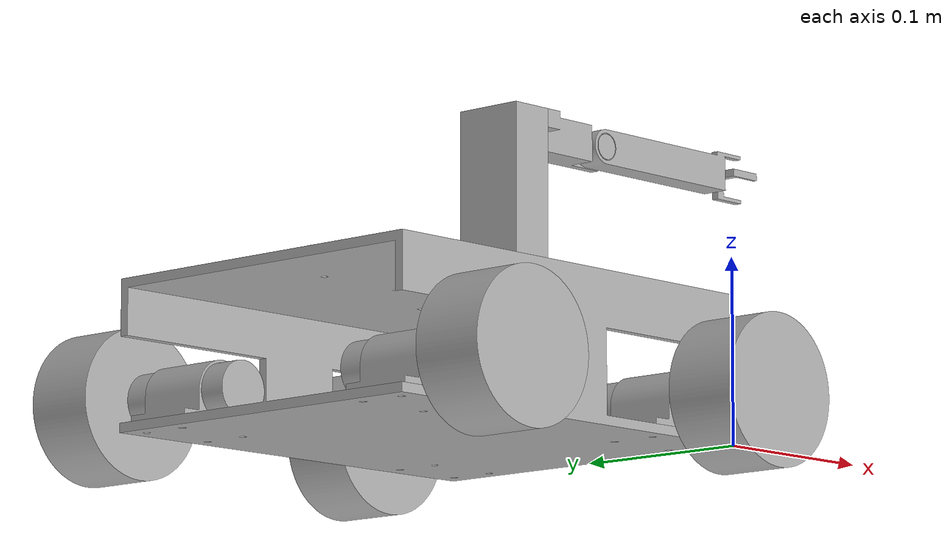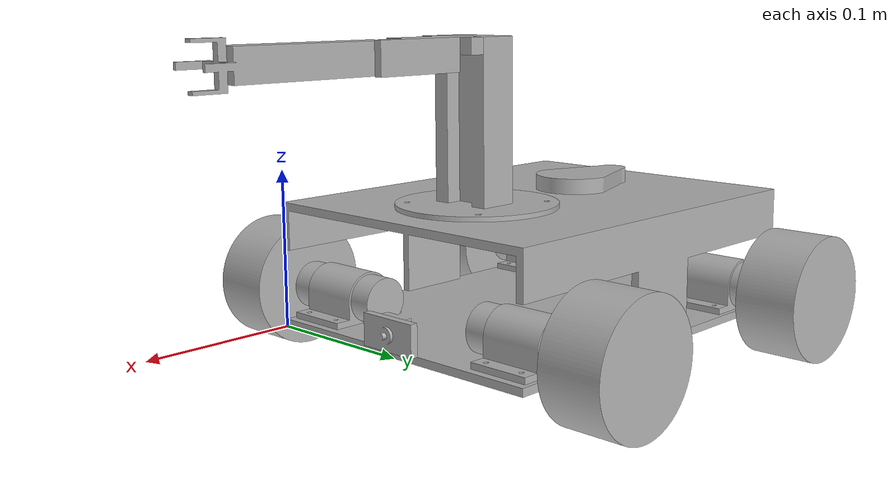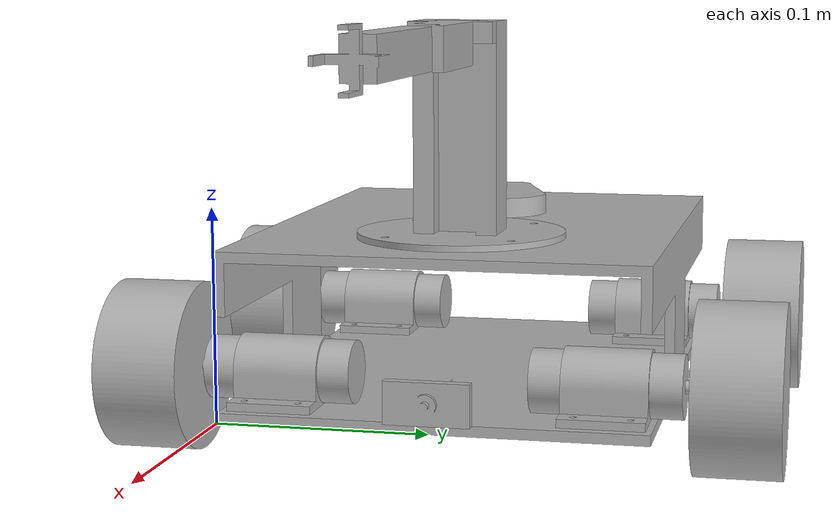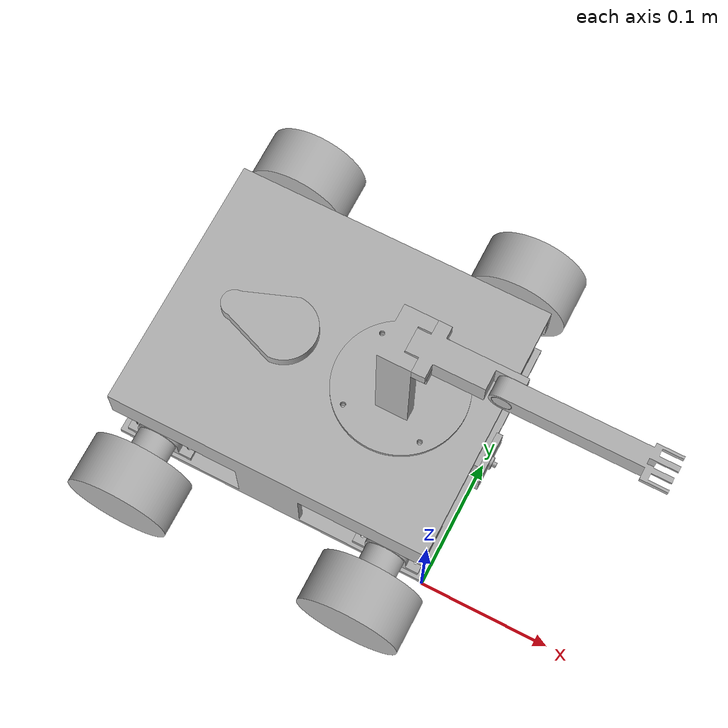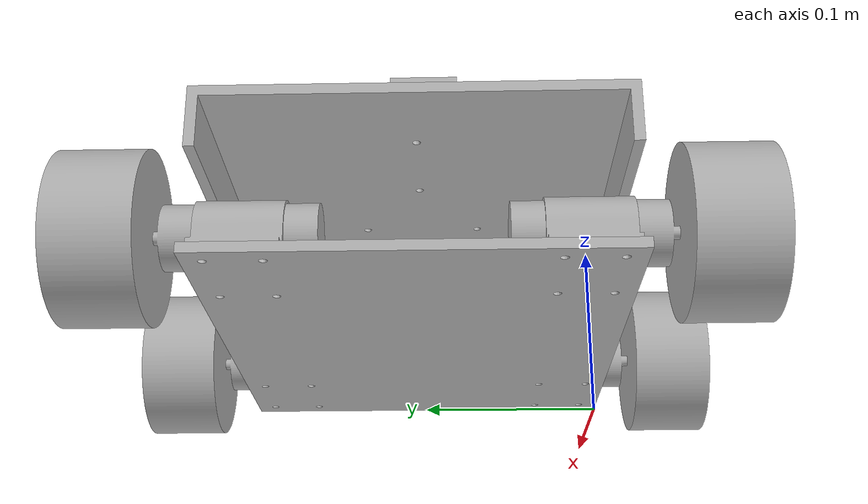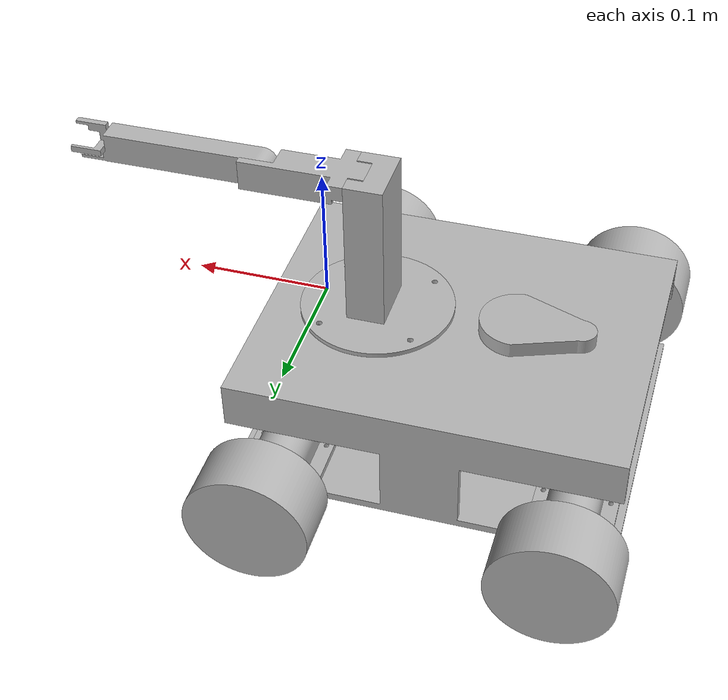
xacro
<?xml version="1.0" ?>
<robot name="robot_ros_clean" xmlns:xacro="http://www.ros.org/wiki/xacro">

<xacro:include filename="$(find robot_ros_clean_description)/urdf/materials.xacro" />
<xacro:include filename="$(find robot_ros_clean_description)/urdf/robot_ros_clean.gazebo" />

<link name="base_footprint"/>

<joint name="base_footprint_joint" type="fixed">
  <parent link="base_footprint"/>
  <child link="base_link"/>
  <origin xyz="0 0 0" rpy="0 0 0"/>
</joint>

<!--                        BASE LINK                                  -->
<link name="base_link">
  <inertial>
    <origin xyz="-0.12462045008338714 0.09999999999999995 0.04188167126230022" rpy="0 0 0"/>
    <mass value="2.283418938552482"/>
    <inertia ixx="0.012527" iyy="0.014412" izz="0.021139" ixy="-0.0" iyz="-0.0" ixz="2.5e-05"/>
  </inertial>
  <visual>
    <origin xyz="0 0 0" rpy="0 0 0"/>
    <geometry>
      <mesh filename="package://robot_ros_clean_description/meshes/base_link.stl" scale="0.001 0.001 0.001"/>
    </geometry>
    <material name="silver"/>
  </visual>
  <collision>
    <origin xyz="0 0 0" rpy="0 0 0"/>
    <geometry>
      <mesh filename="package://robot_ros_clean_description/meshes/base_link.stl" scale="0.001 0.001 0.001"/>
    </geometry>
  </collision>
</link>

<!--                     TAY MAY (2-DOF ARM: P-R)                     -->
<link name="ros_base_arm_1">
  <inertial>
    <origin xyz="-0.029516493136890608 0.03000000000000004 0.04134096552037238" rpy="0 0 0"/>
    <mass value="0.4033034789727494"/>
    <inertia ixx="0.000554" iyy="0.000519" izz="0.000177" ixy="-0.0" iyz="0.0" ixz="-2e-06"/>
  </inertial>
  <visual>
    <origin xyz="0.04 -0.07 -0.08" rpy="0 0 0"/>
    <geometry>
      <mesh filename="package://robot_ros_clean_description/meshes/ros_base_arm_1.stl" scale="0.001 0.001 0.001"/>
    </geometry>
    <material name="silver"/>
  </visual>
  <collision>
    <origin xyz="0.04 -0.07 -0.08" rpy="0 0 0"/>
    <geometry>
      <mesh filename="package://robot_ros_clean_description/meshes/ros_base_arm_1.stl" scale="0.001 0.001 0.001"/>
    </geometry>
  </collision>
</link>

<!-- Khop 1: Tinh tien (Prismatic) -->
<link name="ros_link1_1">
  <inertial>
    <origin xyz="0.038230908420957735 0.0011931596637218683 -0.008863149486995903" rpy="0 0 0"/>
    <mass value="0.09948537534151555"/>
    <inertia ixx="8e-06" iyy="4.4e-05" izz="4.6e-05" ixy="-2e-06" iyz="0.0" ixz="3e-06"/>
  </inertial>
  <visual>
    <origin xyz="0.065 -0.1 -0.183" rpy="0 0 0"/>
    <geometry>
      <mesh filename="package://robot_ros_clean_description/meshes/ros_link1_1.stl" scale="0.001 0.001 0.001"/>
    </geometry>
    <material name="silver"/>
  </visual>
  <collision>
    <origin xyz="0.065 -0.1 -0.183" rpy="0 0 0"/>
    <geometry>
      <mesh filename="package://robot_ros_clean_description/meshes/ros_link1_1.stl" scale="0.001 0.001 0.001"/>
    </geometry>
  </collision>
</link>

<!-- Khop 2: Quay (Revolute) -->
<link name="ros_link2_1">
  <inertial>
    <origin xyz="0.042406282335935554 2.7755575615628914e-17 0.03245348508382098" rpy="0 0 0"/>
    <mass value="0.11487741223113516"/>
    <inertia ixx="4.4e-05" iyy="0.000111" izz="7.2e-05" ixy="0.0" iyz="0.0" ixz="-5e-05"/>
  </inertial>
  <visual>
    <origin xyz="-0.005 -0.0985 -0.173" rpy="0 0 0"/>
    <geometry>
      <mesh filename="package://robot_ros_clean_description/meshes/ros_link2_1.stl" scale="0.001 0.001 0.001"/>
    </geometry>
    <material name="silver"/>
  </visual>
  <collision>
    <origin xyz="-0.005 -0.0985 -0.173" rpy="0 0 0"/>
    <geometry>
      <mesh filename="package://robot_ros_clean_description/meshes/ros_link2_1.stl" scale="0.001 0.001 0.001"/>
    </geometry>
  </collision>
</link>

<!--                  BANH XE MECANUM - FRONT LEFT (1)                -->
<link name="motor_holder_1">
  <inertial>
    <origin xyz="-0.021500000000021897 0.012999999999999979 0.008985632228465181" rpy="0 0 0"/>
    <mass value="0.0883728633386553"/>
    <inertia ixx="2.1e-05" iyy="3.1e-05" izz="3.3e-05" ixy="-0.0" iyz="-0.0" ixz="0.0"/>
  </inertial>
  <visual>
    <origin xyz="0.01 -0.01 -0.005" rpy="0 0 0"/>
    <geometry>
      <mesh filename="package://robot_ros_clean_description/meshes/motor-holder_1.stl" scale="0.001 0.001 0.001"/>
    </geometry>
    <material name="silver"/>
  </visual>
  <collision>
    <origin xyz="0.01 -0.01 -0.005" rpy="0 0 0"/>
    <geometry>
      <mesh filename="package://robot_ros_clean_description/meshes/motor-holder_1.stl" scale="0.001 0.001 0.001"/>
    </geometry>
  </collision>
</link>

<link name="dong_co_1">
  <inertial>
    <origin xyz="2.067790383364354e-15 -0.00036118980169993695 2.0816681711721685e-16" rpy="0 0 0"/>
    <mass value="0.39174796452285"/>
    <inertia ixx="0.000186" iyy="4.4e-05" izz="0.000186" ixy="0.0" iyz="0.0" ixz="0.0"/>
  </inertial>
  <visual>
    <origin xyz="0.0315 -0.023 -0.0201" rpy="0 0 0"/>
    <geometry>
      <mesh filename="package://robot_ros_clean_description/meshes/dong_co_1.stl" scale="0.001 0.001 0.001"/>
    </geometry>
    <material name="silver"/>
  </visual>
  <collision>
    <origin xyz="0.0315 -0.023 -0.0201" rpy="0 0 0"/>
    <geometry>
      <mesh filename="package://robot_ros_clean_description/meshes/dong_co_1.stl" scale="0.001 0.001 0.001"/>
    </geometry>
  </collision>
</link>

<link name="banh_xe_1">
  <inertial>
    <origin xyz="2.8171909249863347e-15 -0.010021123454858952 5.169475958410885e-16" rpy="0 0 0"/>
    <mass value="0.18672464343655906"/>
    <inertia ixx="0.0001" iyy="0.00015" izz="0.0001" ixy="-0.0" iyz="0.0" ixz="-0.0"/>
  </inertial>
  <visual>
    <origin xyz="0.0315 0.027 -0.0201" rpy="0 0 0"/>
    <geometry>
      <mesh filename="package://robot_ros_clean_description/meshes/banh_xe_1.stl" scale="0.001 0.001 0.001"/>
    </geometry>
    <material name="silver"/>
  </visual>
  <collision>
    <origin xyz="0.0315 0.027 -0.0201" rpy="0 0 0"/>
    <geometry>
      <mesh filename="package://robot_ros_clean_description/meshes/banh_xe_1.stl" scale="0.001 0.001 0.001"/>
    </geometry>
  </collision>
</link>

<!--                  BANH XE MECANUM - BACK LEFT (2)                 -->
<link name="motor_holder_2">
  <inertial>
    <origin xyz="-0.02149999999997857 0.013000000000000067 0.00898563222846439" rpy="0 0 0"/>
    <mass value="0.0883728633386553"/>
    <inertia ixx="2.1e-05" iyy="3.1e-05" izz="3.3e-05" ixy="-0.0" iyz="0.0" ixz="-0.0"/>
  </inertial>
  <visual>
    <origin xyz="0.01 -0.164 -0.005" rpy="0 0 0"/>
    <geometry>
      <mesh filename="package://robot_ros_clean_description/meshes/motor-holder_2.stl" scale="0.001 0.001 0.001"/>
    </geometry>
    <material name="silver"/>
  </visual>
  <collision>
    <origin xyz="0.01 -0.164 -0.005" rpy="0 0 0"/>
    <geometry>
      <mesh filename="package://robot_ros_clean_description/meshes/motor-holder_2.stl" scale="0.001 0.001 0.001"/>
    </geometry>
  </collision>
</link>

<link name="dong_co_2">
  <inertial>
    <origin xyz="1.762479051592436e-15 0.0003611898016997739 -9.124645483638005e-16" rpy="0 0 0"/>
    <mass value="0.39174796452285"/>
    <inertia ixx="0.000186" iyy="4.4e-05" izz="0.000186" ixy="-0.0" iyz="0.0" ixz="-0.0"/>
  </inertial>
  <visual>
    <origin xyz="0.0315 -0.177 -0.0201" rpy="0 0 0"/>
    <geometry>
      <mesh filename="package://robot_ros_clean_description/meshes/dong_co_2.stl" scale="0.001 0.001 0.001"/>
    </geometry>
    <material name="silver"/>
  </visual>
  <collision>
    <origin xyz="0.0315 -0.177 -0.0201" rpy="0 0 0"/>
    <geometry>
      <mesh filename="package://robot_ros_clean_description/meshes/dong_co_2.stl" scale="0.001 0.001 0.001"/>
    </geometry>
  </collision>
</link>

<link name="banh_xe_2">
  <inertial>
    <origin xyz="0.0 0.010021123454857339 -3.4243441415782172e-15" rpy="0 0 0"/>
    <mass value="0.18672464343655906"/>
    <inertia ixx="0.0001" iyy="0.00015" izz="0.0001" ixy="0.0" iyz="-0.0" ixz="0.0"/>
  </inertial>
  <visual>
    <origin xyz="0.0315 -0.227 -0.0201" rpy="0 0 0"/>
    <geometry>
      <mesh filename="package://robot_ros_clean_description/meshes/banh_xe_2.stl" scale="0.001 0.001 0.001"/>
    </geometry>
    <material name="silver"/>
  </visual>
  <collision>
    <origin xyz="0.0315 -0.227 -0.0201" rpy="0 0 0"/>
    <geometry>
      <mesh filename="package://robot_ros_clean_description/meshes/banh_xe_2.stl" scale="0.001 0.001 0.001"/>
    </geometry>
  </collision>
</link>

<!--                  BANH XE MECANUM - FRONT RIGHT (3)               -->
<link name="motor_holder_3">
  <inertial>
    <origin xyz="0.021500000000021446 -0.012999999999999973 0.008985632228466295" rpy="0 0 0"/>
    <mass value="0.0883728633386553"/>
    <inertia ixx="2.1e-05" iyy="3.1e-05" izz="3.3e-05" ixy="-0.0" iyz="0.0" ixz="-0.0"/>
  </inertial>
  <visual>
    <origin xyz="0.24 -0.036 -0.005" rpy="0 0 0"/>
    <geometry>
      <mesh filename="package://robot_ros_clean_description/meshes/motor-holder_3.stl" scale="0.001 0.001 0.001"/>
    </geometry>
    <material name="silver"/>
  </visual>
  <collision>
    <origin xyz="0.24 -0.036 -0.005" rpy="0 0 0"/>
    <geometry>
      <mesh filename="package://robot_ros_clean_description/meshes/motor-holder_3.stl" scale="0.001 0.001 0.001"/>
    </geometry>
  </collision>
</link>

<link name="dong_co_3">
  <inertial>
    <origin xyz="1.6653345369377348e-15 -0.0003611898016992847 -9.26342336171615e-16" rpy="0 0 0"/>
    <mass value="0.39174796452285"/>
    <inertia ixx="0.000186" iyy="4.4e-05" izz="0.000186" ixy="0.0" iyz="-0.0" ixz="0.0"/>
  </inertial>
  <visual>
    <origin xyz="0.2185 -0.023 -0.0201" rpy="0 0 0"/>
    <geometry>
      <mesh filename="package://robot_ros_clean_description/meshes/dong_co_3.stl" scale="0.001 0.001 0.001"/>
    </geometry>
    <material name="silver"/>
  </visual>
  <collision>
    <origin xyz="0.2185 -0.023 -0.0201" rpy="0 0 0"/>
    <geometry>
      <mesh filename="package://robot_ros_clean_description/meshes/dong_co_3.stl" scale="0.001 0.001 0.001"/>
    </geometry>
  </collision>
</link>

<link name="banh_xe_3">
  <inertial>
    <origin xyz="-1.1379786002407855e-15 -0.010021123454857981 3.5006719745211967e-15" rpy="0 0 0"/>
    <mass value="0.18672464343655906"/>
    <inertia ixx="0.0001" iyy="0.00015" izz="0.0001" ixy="-0.0" iyz="0.0" ixz="0.0"/>
  </inertial>
  <visual>
    <origin xyz="0.2185 0.027 -0.0201" rpy="0 0 0"/>
    <geometry>
      <mesh filename="package://robot_ros_clean_description/meshes/banh_xe_3.stl" scale="0.001 0.001 0.001"/>
    </geometry>
    <material name="silver"/>
  </visual>
  <collision>
    <origin xyz="0.2185 0.027 -0.0201" rpy="0 0 0"/>
    <geometry>
      <mesh filename="package://robot_ros_clean_description/meshes/banh_xe_3.stl" scale="0.001 0.001 0.001"/>
    </geometry>
  </collision>
</link>

<!--                  BANH XE MECANUM - BACK RIGHT (4)                -->
<link name="motor_holder_4">
  <inertial>
    <origin xyz="0.02150000000002139 0.01300000000000015 0.008985632228466291" rpy="0 0 0"/>
    <mass value="0.0883728633386553"/>
    <inertia ixx="2.1e-05" iyy="3.1e-05" izz="3.3e-05" ixy="-0.0" iyz="0.0" ixz="-0.0"/>
  </inertial>
  <visual>
    <origin xyz="0.24 -0.164 -0.005" rpy="0 0 0"/>
    <geometry>
      <mesh filename="package://robot_ros_clean_description/meshes/motor-holder_4.stl" scale="0.001 0.001 0.001"/>
    </geometry>
    <material name="silver"/>
  </visual>
  <collision>
    <origin xyz="0.24 -0.164 -0.005" rpy="0 0 0"/>
    <geometry>
      <mesh filename="package://robot_ros_clean_description/meshes/motor-holder_4.stl" scale="0.001 0.001 0.001"/>
    </geometry>
  </collision>
</link>

<link name="dong_co_4">
  <inertial>
    <origin xyz="1.8041124150158794e-15 0.00036118980169985715 -7.494005416219807e-16" rpy="0 0 0"/>
    <mass value="0.39174796452285"/>
    <inertia ixx="0.000186" iyy="4.4e-05" izz="0.000186" ixy="-0.0" iyz="0.0" ixz="0.0"/>
  </inertial>
  <visual>
    <origin xyz="0.2185 -0.177 -0.0201" rpy="0 0 0"/>
    <geometry>
      <mesh filename="package://robot_ros_clean_description/meshes/dong_co_4.stl" scale="0.001 0.001 0.001"/>
    </geometry>
    <material name="silver"/>
  </visual>
  <collision>
    <origin xyz="0.2185 -0.177 -0.0201" rpy="0 0 0"/>
    <geometry>
      <mesh filename="package://robot_ros_clean_description/meshes/dong_co_4.stl" scale="0.001 0.001 0.001"/>
    </geometry>
  </collision>
</link>

<link name="banh_xe_4">
  <inertial>
    <origin xyz="2.7755575615628914e-17 0.010021123454858422 -3.3237301799715624e-15" rpy="0 0 0"/>
    <mass value="0.18672464343655906"/>
    <inertia ixx="0.0001" iyy="0.00015" izz="0.0001" ixy="0.0" iyz="0.0" ixz="0.0"/>
  </inertial>
  <visual>
    <origin xyz="0.2185 -0.227 -0.0201" rpy="0 0 0"/>
    <geometry>
      <mesh filename="package://robot_ros_clean_description/meshes/banh_xe_4.stl" scale="0.001 0.001 0.001"/>
    </geometry>
    <material name="silver"/>
  </visual>
  <collision>
    <origin xyz="0.2185 -0.227 -0.0201" rpy="0 0 0"/>
    <geometry>
      <mesh filename="package://robot_ros_clean_description/meshes/banh_xe_4.stl" scale="0.001 0.001 0.001"/>
    </geometry>
  </collision>
</link>

<!--                        CAM BIEN                                   -->
<link name="ros_LiDar_1">
  <inertial>
    <origin xyz="-0.020570799003321955 4.163336342344337e-17 0.005010425278889286" rpy="0 0 0"/>
    <mass value="0.19870606989277823"/>
    <inertia ixx="2.7e-05" iyy="7.1e-05" izz="9.4e-05" ixy="0.0" iyz="0.0" ixz="0.0"/>
  </inertial>
  <visual>
    <origin xyz="0.15 -0.1 -0.08" rpy="0 0 0"/>
    <geometry>
      <mesh filename="package://robot_ros_clean_description/meshes/ros_LiDar_1.stl" scale="0.001 0.001 0.001"/>
    </geometry>
    <material name="silver"/>
  </visual>
  <collision>
    <origin xyz="0.15 -0.1 -0.08" rpy="0 0 0"/>
    <geometry>
      <mesh filename="package://robot_ros_clean_description/meshes/ros_LiDar_1.stl" scale="0.001 0.001 0.001"/>
    </geometry>
  </collision>
</link>

<link name="ros_camera_1">
  <inertial>
    <origin xyz="0.002706674669848084 -0.004999999999974414 1.3798388616252655e-07" rpy="0 0 0"/>
    <mass value="0.03233713708856587"/>
    <inertia ixx="5e-06" iyy="1e-06" izz="4e-06" ixy="-0.0" iyz="0.0" ixz="0.0"/>
  </inertial>
  <visual>
    <origin xyz="-0.0 -0.105 -0.015" rpy="0 0 0"/>
    <geometry>
      <mesh filename="package://robot_ros_clean_description/meshes/ros_camera_1.stl" scale="0.001 0.001 0.001"/>
    </geometry>
    <material name="silver"/>
  </visual>
  <collision>
    <origin xyz="-0.0 -0.105 -0.015" rpy="0 0 0"/>
    <geometry>
      <mesh filename="package://robot_ros_clean_description/meshes/ros_camera_1.stl" scale="0.001 0.001 0.001"/>
    </geometry>
  </collision>
</link>

<!--                ENCODER LINK (virtual link cho encoder)           -->
<link name="encoder_link">
  <inertial>
    <origin xyz="0 0 0" rpy="0 0 0"/>
    <mass value="0.001"/>
    <inertia ixx="1e-05" iyy="1e-05" izz="1e-05" ixy="0" iyz="0" ixz="0"/>
  </inertial>
</link>

<!--                           JOINTS                                  -->

<!-- ARM: fixed base -->
<joint name="fixed_arm_base" type="fixed">
  <origin xyz="-0.04 0.07 0.08" rpy="0 0 0"/>
  <parent link="base_link"/>
  <child link="ros_base_arm_1"/>
</joint>

<!-- ARM: Khop 1 - Tinh tien (Prismatic) - KHOP P -->
<joint name="slider_joint" type="prismatic">
  <origin xyz="-0.025 0.03 0.103" rpy="0 0 0"/>
  <parent link="ros_base_arm_1"/>
  <child link="ros_link1_1"/>
  <axis xyz="0.0 0.0 1.0"/>
  <limit upper="0.0" lower="-0.07" effort="100" velocity="100"/>
</joint>

<!-- ARM: Khop 2 - Quay (Revolute) - KHOP R -->
<joint name="revolute_arm" type="revolute">
  <origin xyz="0.07 -0.0015 -0.01" rpy="0 0 0"/>
  <parent link="ros_link1_1"/>
  <child link="ros_link2_1"/>
  <axis xyz="0.0 1.0 0.0"/>
  <limit upper="1.570796" lower="-1.570796" effort="100" velocity="100"/>
</joint>

<!-- WHEEL FL: motor holder -->
<joint name="fixed_motor_holder_1" type="fixed">
  <origin xyz="-0.01 0.01 0.005" rpy="0 0 0"/>
  <parent link="base_link"/>
  <child link="motor_holder_1"/>
</joint>

<joint name="fixed_dong_co_1" type="fixed">
  <origin xyz="-0.0215 0.013 0.0151" rpy="0 0 0"/>
  <parent link="motor_holder_1"/>
  <child link="dong_co_1"/>
</joint>

<!-- WHEEL FL: banh xe - co encoder -->
<joint name="wheel_fl_joint" type="continuous">
  <origin xyz="0.0 -0.05 0.0" rpy="0 0 0"/>
  <parent link="dong_co_1"/>
  <child link="banh_xe_1"/>
  <axis xyz="0.0 1.0 0.0"/>
</joint>

<!-- WHEEL BL: motor holder -->
<joint name="fixed_motor_holder_2" type="fixed">
  <origin xyz="-0.01 0.164 0.005" rpy="0 0 0"/>
  <parent link="base_link"/>
  <child link="motor_holder_2"/>
</joint>

<joint name="fixed_dong_co_2" type="fixed">
  <origin xyz="-0.0215 0.013 0.0151" rpy="0 0 0"/>
  <parent link="motor_holder_2"/>
  <child link="dong_co_2"/>
</joint>

<!-- WHEEL BL: banh xe - co encoder -->
<joint name="wheel_bl_joint" type="continuous">
  <origin xyz="0.0 0.05 0.0" rpy="0 0 0"/>
  <parent link="dong_co_2"/>
  <child link="banh_xe_2"/>
  <axis xyz="0.0 1.0 0.0"/>
</joint>

<!-- WHEEL FR: motor holder -->
<joint name="fixed_motor_holder_3" type="fixed">
  <origin xyz="-0.24 0.036 0.005" rpy="0 0 0"/>
  <parent link="base_link"/>
  <child link="motor_holder_3"/>
</joint>

<joint name="fixed_dong_co_3" type="fixed">
  <origin xyz="0.0215 -0.013 0.0151" rpy="0 0 0"/>
  <parent link="motor_holder_3"/>
  <child link="dong_co_3"/>
</joint>

<!-- WHEEL FR: banh xe - co encoder -->
<joint name="wheel_fr_joint" type="continuous">
  <origin xyz="0.0 -0.05 0.0" rpy="0 0 0"/>
  <parent link="dong_co_3"/>
  <child link="banh_xe_3"/>
  <axis xyz="0.0 1.0 0.0"/>
</joint>

<!-- WHEEL BR: motor holder -->
<joint name="fixed_motor_holder_4" type="fixed">
  <origin xyz="-0.24 0.164 0.005" rpy="0 0 0"/>
  <parent link="base_link"/>
  <child link="motor_holder_4"/>
</joint>

<joint name="fixed_dong_co_4" type="fixed">
  <origin xyz="0.0215 0.013 0.0151" rpy="0 0 0"/>
  <parent link="motor_holder_4"/>
  <child link="dong_co_4"/>
</joint>

<!-- WHEEL BR: banh xe - co encoder -->
<joint name="wheel_br_joint" type="continuous">
  <origin xyz="0.0 0.05 0.0" rpy="0 0 0"/>
  <parent link="dong_co_4"/>
  <child link="banh_xe_4"/>
  <axis xyz="0.0 1.0 0.0"/>
</joint>

<!-- SENSORS -->
<joint name="fixed_lidar" type="fixed">
  <origin xyz="-0.15 0.1 0.08" rpy="0 0 0"/>
  <parent link="base_link"/>
  <child link="ros_LiDar_1"/>
</joint>

<joint name="fixed_camera" type="fixed">
  <origin xyz="0.0 0.105 0.015" rpy="0 0 0"/>
  <parent link="base_link"/>
  <child link="ros_camera_1"/>
</joint>

<!-- ENCODER: virtual link gan vao base_link -->
<joint name="encoder_joint" type="fixed">
  <origin xyz="0 0 0" rpy="0 0 0"/>
  <parent link="base_link"/>
  <child link="encoder_link"/>
</joint>

<!--              ROS2_CONTROL - HARDWARE INTERFACE                   -->
<ros2_control name="GazeboSystem" type="system">
  <hardware>
    <plugin>gazebo_ros2_control/GazeboSystem</plugin>
  </hardware>

  <joint name="slider_joint">
    <command_interface name="position">
      <param name="min">-0.07</param>
      <param name="max">0.0</param>
    </command_interface>
    <state_interface name="position"/>
    <state_interface name="velocity"/>
  </joint>

  <joint name="revolute_arm">
    <command_interface name="position">
      <param name="min">-1.570796</param>
      <param name="max">1.570796</param>
    </command_interface>
    <state_interface name="position"/>
    <state_interface name="velocity"/>
  </joint>
</ros2_control>

<!-- Gazebo ros2_control plugin -->
<gazebo>
  <plugin filename="libgazebo_ros2_control.so" name="gazebo_ros2_control">
    <parameters>$(find robot_ros_clean_description)/config/controllers.yaml</parameters>
  </plugin>
</gazebo>

</robot>

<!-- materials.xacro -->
<robot name="robot_ros_clean" xmlns:xacro="http://www.ros.org/wiki/xacro">

  <material name="silver">
    <color rgba="0.7 0.7 0.7 1.0"/>
  </material>

  <material name="dark_grey">
    <color rgba="0.2 0.2 0.2 1.0"/>
  </material>

  <material name="blue">
    <color rgba="0.0 0.0 0.8 1.0"/>
  </material>

  <material name="red">
    <color rgba="0.8 0.0 0.0 1.0"/>
  </material>

  <material name="black">
    <color rgba="0.0 0.0 0.0 1.0"/>
  </material>

  <material name="white">
    <color rgba="1.0 1.0 1.0 1.0"/>
  </material>

  <material name="orange">
    <color rgba="1.0 0.5 0.0 1.0"/>
  </material>

</robot>

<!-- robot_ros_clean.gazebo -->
<robot name="robot_ros_clean" xmlns:xacro="http://www.ros.org/wiki/xacro">

<xacro:property name="body_color" value="Gazebo/Silver" />

<!--                      LINK MATERIALS                              -->
<gazebo reference="base_link">
  <material>${body_color}</material>
  <mu1>0.2</mu1>
  <mu2>0.2</mu2>
  <selfCollide>false</selfCollide>
  <gravity>true</gravity>
</gazebo>

<gazebo reference="ros_base_arm_1">
  <material>${body_color}</material>
  <mu1>0.2</mu1>
  <mu2>0.2</mu2>
  <selfCollide>false</selfCollide>
</gazebo>

<gazebo reference="ros_link1_1">
  <material>${body_color}</material>
  <mu1>0.2</mu1>
  <mu2>0.2</mu2>
  <selfCollide>false</selfCollide>
</gazebo>

<gazebo reference="ros_link2_1">
  <material>${body_color}</material>
  <mu1>0.2</mu1>
  <mu2>0.2</mu2>
  <selfCollide>false</selfCollide>
</gazebo>

<gazebo reference="motor_holder_1">
  <material>${body_color}</material>
  <mu1>0.2</mu1>
  <mu2>0.2</mu2>
  <selfCollide>false</selfCollide>
</gazebo>

<gazebo reference="dong_co_1">
  <material>${body_color}</material>
  <mu1>0.2</mu1>
  <mu2>0.2</mu2>
  <selfCollide>false</selfCollide>
</gazebo>

<gazebo reference="banh_xe_1">
  <material>Gazebo/DarkGrey</material>
  <mu1>0.0</mu1>
  <mu2>0.0</mu2>
  <selfCollide>false</selfCollide>
</gazebo>

<gazebo reference="motor_holder_2">
  <material>${body_color}</material>
  <mu1>0.2</mu1>
  <mu2>0.2</mu2>
  <selfCollide>false</selfCollide>
</gazebo>

<gazebo reference="dong_co_2">
  <material>${body_color}</material>
  <mu1>0.2</mu1>
  <mu2>0.2</mu2>
  <selfCollide>false</selfCollide>
</gazebo>

<gazebo reference="banh_xe_2">
  <material>Gazebo/DarkGrey</material>
  <mu1>0.0</mu1>
  <mu2>0.0</mu2>
  <selfCollide>false</selfCollide>
</gazebo>

<gazebo reference="motor_holder_3">
  <material>${body_color}</material>
  <mu1>0.2</mu1>
  <mu2>0.2</mu2>
  <selfCollide>false</selfCollide>
</gazebo>

<gazebo reference="dong_co_3">
  <material>${body_color}</material>
  <mu1>0.2</mu1>
  <mu2>0.2</mu2>
  <selfCollide>false</selfCollide>
</gazebo>

<gazebo reference="banh_xe_3">
  <material>Gazebo/DarkGrey</material>
  <mu1>0.0</mu1>
  <mu2>0.0</mu2>
  <selfCollide>false</selfCollide>
</gazebo>

<gazebo reference="motor_holder_4">
  <material>${body_color}</material>
  <mu1>0.2</mu1>
  <mu2>0.2</mu2>
  <selfCollide>false</selfCollide>
</gazebo>

<gazebo reference="dong_co_4">
  <material>${body_color}</material>
  <mu1>0.2</mu1>
  <mu2>0.2</mu2>
  <selfCollide>false</selfCollide>
</gazebo>

<gazebo reference="banh_xe_4">
  <material>Gazebo/DarkGrey</material>
  <mu1>0.0</mu1>
  <mu2>0.0</mu2>
  <selfCollide>false</selfCollide>
</gazebo>

<!--              CAM BIEN 1: LIDAR PLUGIN                            -->
<!-- Publish topic: /scan (sensor_msgs/LaserScan)                     -->
<gazebo reference="ros_LiDar_1">
  <material>Gazebo/Blue</material>
  <sensor type="ray" name="lidar_sensor">
    <pose>0 0 0 0 0 0</pose>
    <visualize>true</visualize>
    <update_rate>10</update_rate>
    <ray>
      <scan>
        <horizontal>
          <samples>360</samples>
          <resolution>1</resolution>
          <min_angle>-3.14159265</min_angle>
          <max_angle>3.14159265</max_angle>
        </horizontal>
      </scan>
      <range>
        <min>0.1</min>
        <max>10.0</max>
        <resolution>0.01</resolution>
      </range>
      <noise>
        <type>gaussian</type>
        <mean>0.0</mean>
        <stddev>0.01</stddev>
      </noise>
    </ray>
    <plugin name="lidar_plugin" filename="libgazebo_ros_ray_sensor.so">
      <ros>
        <remapping>~/out:=scan</remapping>
      </ros>
      <output_type>sensor_msgs/LaserScan</output_type>
      <frame_name>ros_LiDar_1</frame_name>
    </plugin>
  </sensor>
</gazebo>

<!--              CAM BIEN 2: CAMERA PLUGIN                           -->
<!-- Publish topic: /camera/image_raw (sensor_msgs/Image)             -->
<!--               /camera/camera_info (sensor_msgs/CameraInfo)       -->
<gazebo reference="ros_camera_1">
  <material>Gazebo/Red</material>
  <sensor type="camera" name="camera_sensor">
    <update_rate>30.0</update_rate>
    <camera name="front_camera">
      <horizontal_fov>1.3962634</horizontal_fov>
      <image>
        <width>640</width>
        <height>480</height>
        <format>R8G8B8</format>
      </image>
      <clip>
        <near>0.02</near>
        <far>300</far>
      </clip>
      <noise>
        <type>gaussian</type>
        <mean>0.0</mean>
        <stddev>0.007</stddev>
      </noise>
    </camera>
    <plugin name="camera_plugin" filename="libgazebo_ros_camera.so">
      <frame_name>ros_camera_1</frame_name>
      <ros>
        <remapping>image_raw:=camera/image_raw</remapping>
        <remapping>camera_info:=camera/camera_info</remapping>
      </ros>
    </plugin>
  </sensor>
</gazebo>

<!--   CAM BIEN 3: ENCODER - doc qua JointStateBroadcaster            -->
<!--   Encoder duoc mo phong thong qua state_interface "position"     -->
<!--   cua 4 wheel joints trong ros2_control.                         -->
<!--   Topic: /joint_states (sensor_msgs/JointState)                  -->
<!--   - banh_xe_1..4 position = goc quay (rad) ~ encoder count       -->
<gazebo>
  <plugin name="mecanum_planar_move" filename="libgazebo_ros_planar_move.so">
    <ros>
      <remapping>cmd_vel:=cmd_vel</remapping>
      <remapping>odom:=odom</remapping>
    </ros>
    <update_rate>100</update_rate>
    <publish_rate>50</publish_rate>
    <publish_odom>true</publish_odom>
    <publish_odom_tf>true</publish_odom_tf>
    <odometry_frame>odom</odometry_frame>
    <robot_base_frame>base_footprint</robot_base_frame> <covariance_x>0.0001</covariance_x>
    <covariance_y>0.0001</covariance_y>
    <covariance_yaw>0.01</covariance_yaw>
  </plugin>
</gazebo>

</robot>
